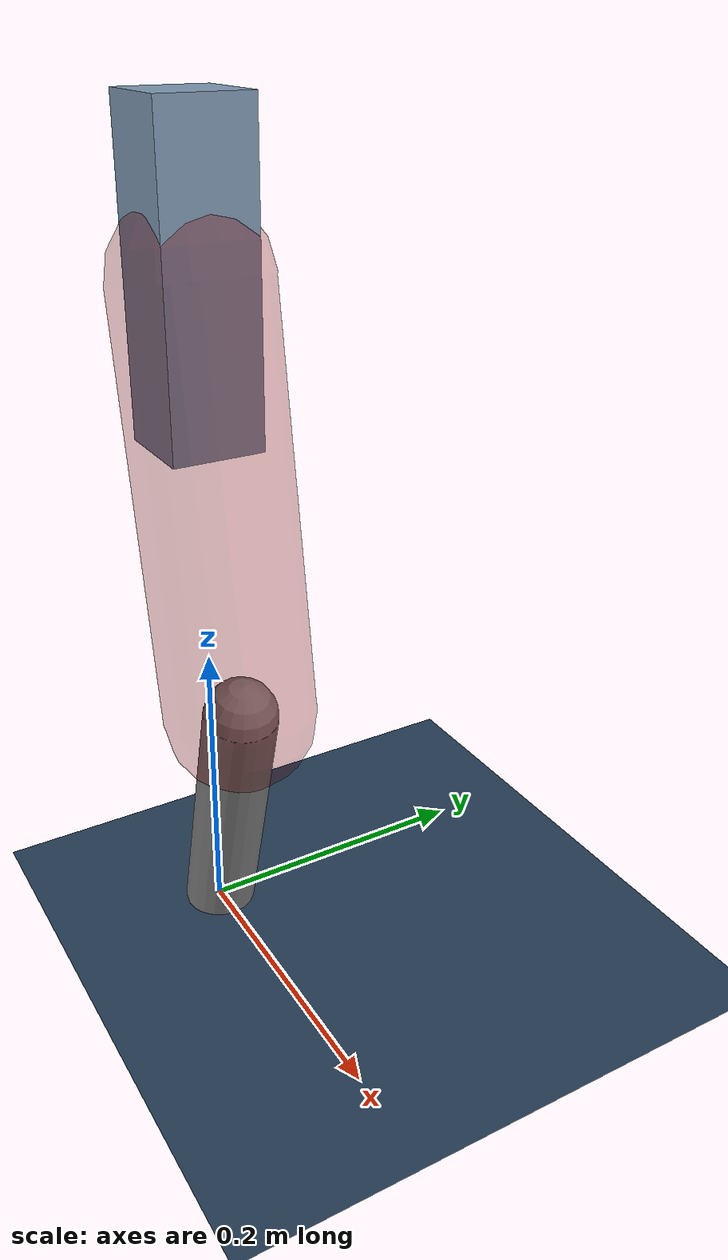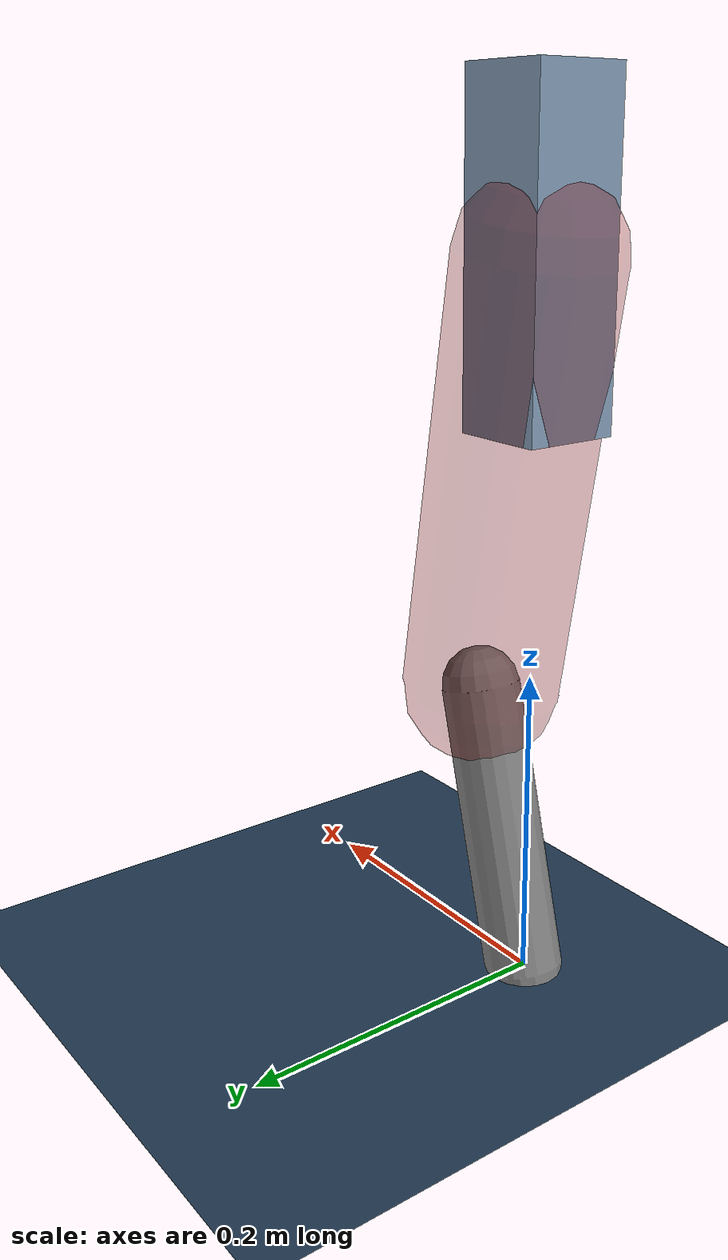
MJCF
<mujoco model="Hopper2D">
	<compiler inertiafromgeom="true" angle="radian" />
	<option timestep="0.001" integrator="implicit" cone="elliptic" solver="Newton" tolerance="1e-10" />

	<default>
		<geom contype="1" conaffinity="1" condim="3" friction="2 0.005 0.0001" solref="0.005 1" />
		<joint limited="true" damping="0.1" />
	</default>

	<asset>
		<texture name="skybox" type="skybox" builtin="gradient" rgb1=".4 .6 .8" rgb2="0 0 0" width="800" height="800" />
		<texture name="grid" type="2d" builtin="checker" rgb1=".1 .2 .3" rgb2=".2 .3 .4" width="300" height="300" mark="edge" markrgb=".2 .3 .4" />
		<material name="ground" texture="grid" texrepeat="1 1" texuniform="true" reflectance="0.1" />
		<material name="leg" rgba="0.5 0.6 0.7 1" />
	</asset>

	<worldbody>

		<geom name="floor" type="plane" size="5 5 0.25" material="ground" />

		<light directional="false" diffuse="0.8 0.8 0.8" specular="0.3 0.3 0.3" pos="0 0 2" dir="0 0 -1" />
		<light mode="targetbodycom" target="base" directional="false" diffuse="0.8 0.8 0.8" specular="0.3 0.3 0.3" pos="0 0 2" dir="0 0 -1" />

		<camera name="fixed" pos="0 -2 1" xyaxes="1 0 0 0 0 1" />
		<camera name="tracking" mode="trackcom" pos="0 -3 1" />

		<body name="root" pos="0 0 0.4491852909539723">
			<joint name="slide_x" type="slide" axis="1 0 0" range="-100 100" />
			<joint name="slide_z" type="slide" axis="0 0 1" range="0 10" />

			<body name="base" pos="0 0 0">
				<geom name="torso" type="box" size="0.03 0.03 0.1" mass="2.635" material="leg" />

				<body name="link1" pos="0 0 0" euler="0 1.3981824691025675 0">
					<joint type="hinge" axis="0 -1 0" pos="0 0 0" name="hinge1" limited="true" range="-3.14 3.14" stiffness="0" damping="0.1" />
					<geom name="thigh" type="capsule" fromto="0 0 0 0.27237072584231264 0 0" size="0.05" rgba="0.5 0 0 0.3" mass="0.9149009597742441" />

					<body name="link2" pos="0.27237072584231264 0 0" euler="0 0.42572643592617965 0">
						<joint type="hinge" axis="0 -1 0" pos="0 0 0" name="hinge2" limited="true" range="-3.14 3.14" stiffness="0" damping="0.1" />
						<geom name="shank" type="capsule" fromto="0 0 0 0.18681456511165967 0 0" size="0.025" mass="0.3897331086004937" />

					</body>
				</body>
			</body>
		</body>
	</worldbody>

	<actuator>
		<motor name="torque1" joint="hinge1" ctrlrange="-53.28247052636936 53.28247052636936" ctrllimited="true" gear="1" />
		<motor name="torque2" joint="hinge2" ctrlrange="-163.40759276498798 163.40759276498798" ctrllimited="true" gear="1" />
	</actuator>
</mujoco>
